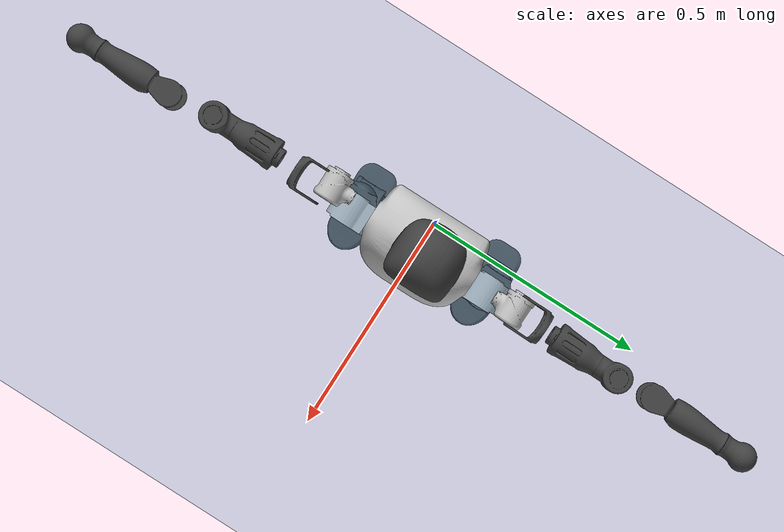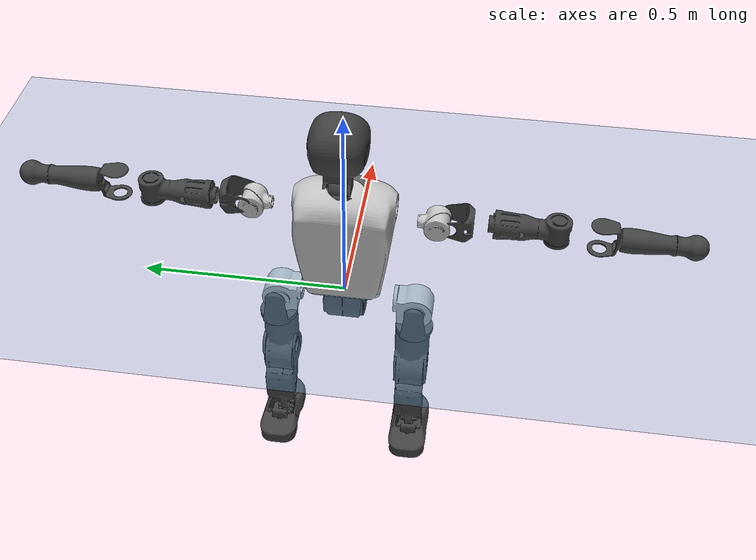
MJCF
<mujoco model="T1">
  <compiler angle="radian" assetdir="assets" balanceinertia="true" inertiafromgeom="false"/>

  <option timestep="0.005" density="1.2" viscosity="2e-05"/>

  <size nkey="1"/>

  <visual>
    <quality shadowsize="8192"/>
    <map shadowclip="0.5"/>
  </visual>

  <default>
    <default class="/">
      <joint armature="0.01" damping="0.01" frictionloss="0.1"/>
      <geom contype="0" conaffinity="0" group="1" solref="-1000 -80"/>
      <site size="0.01 0.005 0.005" group="5"/>
      <general forcelimited="true" biastype="affine" gainprm="25" biasprm="0 -25 -0.6"/>
      <default class="t1">
        <geom rgba="0.25 0.25 0.25 1"/>
        <default class="visual">
          <geom type="mesh" group="2"/>
        </default>
        <default class="collision">
          <geom group="3"/>
        </default>
        <default class="foot">
          <geom size="0.1115 0.05 0.015" type="box" condim="6" group="4" priority="1" solimp="0.015 1 0.015"/>
        </default>
        <default class="reward_collision_sphere">
          <geom group="5" rgba="1 0 0 1"/>
        </default>
      </default>
    </default>
  </default>

  <asset>
    <texture type="skybox" colorspace="auto" name="//unnamed_texture_0" builtin="gradient" rgb1="0.95 0.95 0.95" rgb2="0.95 0.95 0.95" width="100" height="600"/>
    <texture type="2d" colorspace="auto" name="texplane" builtin="checker" rgb1="0.345 0.575 0.748" rgb2="0.345 0.575 0.748" markrgb="1 1 1" width="512" height="512"/>
    <material name="MatPlane" class="/" texture="texplane" texuniform="true" texrepeat="2 2" specular="0.9"/>
    <mesh name="Trunk" class="/" file="Trunk.stl"/>
    <mesh name="H1" class="/" file="H1.stl"/>
    <mesh name="H2" class="/" file="H2.stl"/>
    <mesh name="AL1" class="/" file="AL1.stl"/>
    <mesh name="AL2" class="/" file="AL2.stl"/>
    <mesh name="AL3" class="/" file="AL3.stl"/>
    <mesh name="left_hand_link" class="/" file="left_hand_link.stl"/>
    <mesh name="AR1" class="/" file="AR1.stl"/>
    <mesh name="AR2" class="/" file="AR2.stl"/>
    <mesh name="AR3" class="/" file="AR3.stl"/>
    <mesh name="right_hand_link" class="/" file="right_hand_link.stl"/>
    <mesh name="Waist" class="/" file="Waist.stl"/>
    <mesh name="Hip_Pitch_Left" class="/" file="Hip_Pitch_Left.stl"/>
    <mesh name="Hip_Roll_Left" class="/" file="Hip_Roll_Left.stl"/>
    <mesh name="Hip_Yaw_Left" class="/" file="Hip_Yaw_Left.stl"/>
    <mesh name="Shank_Left" class="/" file="Shank_Left.stl"/>
    <mesh name="Ankle_Cross_Left" class="/" file="Ankle_Cross_Left.stl"/>
    <mesh name="left_foot_link" class="/" file="left_foot_link.stl"/>
    <mesh name="Hip_Pitch_Right" class="/" file="Hip_Pitch_Right.stl"/>
    <mesh name="Hip_Roll_Right" class="/" file="Hip_Roll_Right.stl"/>
    <mesh name="Hip_Yaw_Right" class="/" file="Hip_Yaw_Right.stl"/>
    <mesh name="Shank_Right" class="/" file="Shank_Right.stl"/>
    <mesh name="Ankle_Cross_Right" class="/" file="Ankle_Cross_Right.stl"/>
    <mesh name="right_foot_link" class="/" file="right_foot_link.stl"/>
  </asset>

  <worldbody>
    <geom name="floor" class="/" size="100 100 0.125" type="plane" group="0" material="MatPlane"/>
    <light name="toplight_shadow" class="/" pos="0 0 5" dir="0.0990148 0.0990148 -0.990148" type="directional" ambient="0.04 0.04 0.04" diffuse="0.55 0.55 0.55" specular="0.12 0.12 0.12"/>
    <light name="toplight_fill" class="/" pos="0 0 5" dir="0.0990148 0.0990148 -0.990148" type="directional" castshadow="false" ambient="0.04 0.04 0.04" diffuse="0.3 0.3 0.3" specular="0.08 0.08 0.08"/>
    <body name="trunk" childclass="t1" pos="0.000859152 0.005951 0.00547154" quat="1 1.57611e-05 -1.23098e-05 5.0884e-06">
      <inertial pos="0.0392558 -0.0151571 0.0763599" quat="0.998677 0.0270235 -0.0250303 0.0358897" mass="17.996" diaginertia="0.0539165 0.975607 0.0282869"/>
      <joint name="//unnamed_joint_0" type="free" armature="0" damping="0" frictionloss="0"/>
      <geom name="//unnamed_geom_1" class="visual" rgba="0.76 0.76 0.76 1" mesh="Trunk"/>
      <geom name="//unnamed_geom_2" class="collision" size="0.0842022 0.11227 0.168404" pos="0.0529555 0 0.101897" type="box"/>
      <geom name="//unnamed_geom_3" class="reward_collision_sphere" size="0.12911" pos="0.0529555 0 0.0849144"/>
      <geom name="//unnamed_geom_4" class="reward_collision_sphere" size="0.0168404" pos="0.0529555 0.13909 0"/>
      <geom name="//unnamed_geom_5" class="reward_collision_sphere" size="0.0168404" pos="0.0529555 -0.13909 0"/>
      <geom name="//unnamed_geom_6" class="reward_collision_sphere" size="0.0168404" pos="0.0529555 0.17509 0.152846"/>
      <geom name="//unnamed_geom_7" class="reward_collision_sphere" size="0.0168404" pos="0.0529555 -0.17509 0.152846"/>
      <site name="imu" pos="0.0421996 0.0367292 -0.0220842" size="0.011227"/>
      <camera name="track" pos="0 -3.27271 0" quat="0.707107 0.707107 0 0" mode="trackcom"/>
      <camera name="ego_camera" pos="0.107676 0 0.356641" quat="-0.5 -0.5 0.5 0.5"/>
      <body name="H1" pos="0.0606235 0.0120971 0.193507" quat="1 0.000411858 0.00017841 -0.000190807">
        <inertial pos="-0.000982184 -0.0175302 0.0519946" quat="0.751144 -0.0244753 -0.0576871 0.657157" mass="0.720395" diaginertia="0.000135171 0.00302671 6.34862e-05"/>
        <joint name="AAHead_yaw" pos="0 0 0" axis="0.0255052 0.0190196 0.999494" stiffness="0.0117629" range="-1.55091 1.83475" armature="0.0110787" damping="0" frictionloss="0.200299"/>
        <geom name="//unnamed_geom_8" class="visual" mesh="H1"/>
        <body name="H2" pos="-0.00439475 0.00568054 0.0643305" quat="1 -0.000241807 0.000220536 9.61895e-05">
          <inertial pos="0.0118636 0.0154655 0.0895577" quat="0.982396 0.0903836 -0.140368 -0.0838235" mass="0.899341" diaginertia="0.00109119 0.0227257 0.000655599"/>
          <joint name="Head_pitch" pos="0 0 0" axis="0.00151291 -0.999799 0.0199948" range="-1.20751 0.327724" armature="0.0106319" damping="0" frictionloss="0.165197"/>
          <geom name="//unnamed_geom_9" class="visual" mesh="H2"/>
          <geom name="//unnamed_geom_10" class="collision" size="0.0898157" pos="0.00882592 0 0.0934059"/>
          <geom name="//unnamed_geom_11" class="reward_collision_sphere" size="0.101043" pos="0.0176518 0 0.0849144"/>
        </body>
      </body>
      <body name="AL1" pos="0.0606853 0.175839 0.193993" quat="0.999979 0.00281701 -0.0015842 -0.0055458">
        <inertial pos="-0.000578863 0.0806793 0.00635421" quat="0.497646 0.441578 -0.541803 0.51362" mass="0.76326" diaginertia="0.000687244 0.0127757 0.000128731"/>
        <joint name="Left_Shoulder_Pitch" pos="0 0 0" axis="-0.00461197 0.999975 0.00543872" range="-3.37966 0.979631" armature="0.0112161" damping="0.0283719" frictionloss="0.106903"/>
        <geom name="//unnamed_geom_12" class="visual" rgba="0.76 0.76 0.76 1" mesh="AL1"/>
        <body name="AL2" pos="0.000232953 0.0651619 0.00982932" quat="0.999988 -0.00196866 -0.0038432 -0.00247622">
          <inertial pos="-0.00999236 0.0471817 -0.00826741" quat="0.427286 0.501247 -0.522672 0.541287" mass="0.203158" diaginertia="0.000211316 0.00397342 6.40965e-05"/>
          <joint name="Left_Shoulder_Roll" pos="0 0 0" axis="-0.999999 0.00084859 0.000882344" range="-1.56411 1.75198" armature="0.00955282" damping="0" frictionloss="0.13275"/>
          <geom name="//unnamed_geom_13" class="visual" mesh="AL2"/>
          <body name="AL3" pos="0.000348027 0.0835503 -0.00773371" quat="0.999999 0.00117978 0.000174736 4.20786e-05">
            <inertial pos="0.0139691 0.138767 0.00865438" quat="0.712481 0.700129 -0.0310494 -0.0350104" mass="1.06738" diaginertia="0.00622414 0.12281 0.000219932"/>
            <joint name="Left_Elbow_Pitch" pos="0 0 0" axis="-0.0358783 -0.99932 -0.00853283" range="-2.33335 1.99666" armature="0.0121963" damping="0" frictionloss="0.11205"/>
            <geom name="//unnamed_geom_14" class="visual" mesh="AL3"/>
            <geom name="//unnamed_geom_15" class="collision" size="0.0336809 0.0842022" pos="0 0.0818176 0" quat="0.707105 0.707108 0 0" type="cylinder"/>
            <geom name="//unnamed_geom_16" class="reward_collision_sphere" size="0.0404171"/>
            <body name="left_hand_link" pos="-0.00708227 0.227145 0.0144968" quat="0.999999 -0.00109895 0.000104443 -0.000924926">
              <inertial pos="-0.00165166 0.181369 -0.000671446" quat="0.722291 0.69148 0.00242063 0.0120226" mass="0.447824" diaginertia="0.00502494 0.0960269 9.81282e-05"/>
              <joint name="Left_Elbow_Yaw" pos="0 0 0" axis="-0.0150479 -0.0244101 0.999589" range="-2.16992 0.0272179" armature="0.00997549" damping="0.0853936" frictionloss="0.049134"/>
              <geom name="//unnamed_geom_17" class="visual" mesh="left_hand_link"/>
              <geom name="//unnamed_geom_18" class="collision" size="0.0336809 0.0982359" pos="0 0.212726 0" quat="0.707105 0.707108 0 0" type="cylinder"/>
              <geom name="//unnamed_geom_19" class="reward_collision_sphere" size="0.0561348"/>
              <geom name="//unnamed_geom_20" class="reward_collision_sphere" size="0.0392944" pos="0 0.179999 0"/>
              <geom name="//unnamed_geom_21" class="reward_collision_sphere" size="0.0392944" pos="0 0.351816 0"/>
            </body>
          </body>
        </body>
      </body>
      <body name="AR1" pos="0.0476171 -0.172724 0.190505" quat="0.999989 0.0043009 0.000610632 0.00157729">
        <inertial pos="0.00827124 -0.0753114 0.0138138" quat="0.445944 0.527368 -0.51665 0.506053" mass="0.585122" diaginertia="0.000667074 0.0126738 0.000104065"/>
        <joint name="Right_Shoulder_Pitch" pos="0 0 0" axis="0.0257669 -0.999276 -0.0279916" range="-1.23263 3.29982" armature="0.00937475" damping="0.070779" frictionloss="0.192575"/>
        <geom name="//unnamed_geom_22" class="visual" rgba="0.76 0.76 0.76 1" mesh="AR1"/>
        <body name="AR2" pos="0.0137414 -0.0746601 -0.00256815" quat="1 -4.22092e-05 0.000127748 -0.000131106">
          <inertial pos="0.01193 -0.0469232 -0.00276727" quat="0.517102 0.510133 -0.537199 0.428705" mass="0.206243" diaginertia="0.000177726 0.0036452 6.40205e-05"/>
          <joint name="Right_Shoulder_Roll" pos="0 0 0" axis="-0.998851 -0.0131493 -0.0460903" range="-1.73388 1.57156" armature="0.0107317" damping="0.0853366" frictionloss="0.0872808"/>
          <geom name="//unnamed_geom_23" class="visual" mesh="AR2"/>
          <body name="AR3" pos="-0.00265101 -0.102858 0.00634782" quat="0.99999 0.00416798 -0.0015532 -0.000555331">
            <inertial pos="-0.00495312 -0.137657 0.0041823" quat="0.68493 0.727777 0.0212698 0.0275629" mass="1.30415" diaginertia="0.00617326 0.158567 0.000261729"/>
            <joint name="Right_Elbow_Pitch" pos="0 0 0" axis="-0.0030551 0.999584 0.028694" range="-2.22201 2.1635" armature="0.010543" damping="0" frictionloss="0.0931993"/>
            <geom name="//unnamed_geom_24" class="visual" mesh="AR3"/>
            <geom name="//unnamed_geom_25" class="collision" size="0.0336809 0.0842022" pos="0 -0.0818176 0" quat="0.707105 0.707108 0 0" type="cylinder"/>
            <geom name="//unnamed_geom_26" class="reward_collision_sphere" size="0.0404171"/>
            <body name="right_hand_link" pos="0.0108332 -0.249678 -0.0148148" quat="0.999989 0.00203017 -0.00369689 0.00220726">
              <inertial pos="0.000801184 -0.189259 -0.00557407" quat="0.708532 0.70544 -0.0152847 0.0101063" mass="0.440098" diaginertia="0.00374015 0.0814651 9.28673e-05"/>
              <joint name="Right_Elbow_Yaw" pos="0 0 0" axis="-0.00103862 -0.00494422 0.999987" range="-0.189814 2.42831" armature="0.011895" damping="0.00827121" frictionloss="0.0343252"/>
              <geom name="//unnamed_geom_27" class="visual" mesh="right_hand_link"/>
              <geom name="//unnamed_geom_28" class="collision" size="0.0336809 0.0982359" pos="0 -0.212726 0" quat="0.707105 0.707108 0 0" type="cylinder"/>
              <geom name="//unnamed_geom_29" class="reward_collision_sphere" size="0.0561348"/>
              <geom name="//unnamed_geom_30" class="reward_collision_sphere" size="0.0392944" pos="0 -0.179999 0"/>
              <geom name="//unnamed_geom_31" class="reward_collision_sphere" size="0.0392944" pos="0 -0.351816 0"/>
            </body>
          </body>
        </body>
      </body>
      <body name="Waist" pos="0.0660554 0.0019434 -0.0846553" quat="0.999996 -0.00116105 -0.00183167 0.0018243">
        <inertial pos="0.0180045 -0.00380205 0.00344426" quat="0.984633 0.00829916 -0.174425 0.00214792" mass="4.58535" diaginertia="0.00377954 0.0694703 0.00215099"/>
        <joint name="Waist" pos="0 0 0" axis="-0.0225986 -0.0148923 0.999634" stiffness="0.0101745" range="-1.40397 1.58601" armature="0.00608227" damping="0" frictionloss="0.118011"/>
        <geom name="//unnamed_geom_32" class="visual" mesh="Waist"/>
        <body name="Hip_Pitch_Left" pos="-0.00258834 0.165231 0.0120045" quat="0.999999 -0.000971986 -0.00105891 -0.000597485">
          <inertial pos="0.00178167 -0.0233073 -0.0253624" quat="0.966866 0.252582 0.031945 -0.0187752" mass="1.20139" diaginertia="0.000986908 0.0151469 0.000563182"/>
          <joint name="Left_Hip_Pitch" pos="0 0 0" axis="0.0107707 0.999916 -0.00715222" range="-1.82316 1.29726" armature="0.00283082" damping="0" frictionloss="0.0796976"/>
          <geom name="//unnamed_geom_33" class="visual" rgba="0.76 0.76 0.76 1" mesh="Hip_Pitch_Left"/>
          <body name="Hip_Roll_Left" pos="-0.0135579 0.00733326 -0.00909181" quat="1 -5.46472e-05 1.72308e-05 -7.45007e-06">
            <inertial pos="0.00875257 -0.00120947 -0.0529327" quat="0.709207 -0.0674358 -0.0433915 0.700425" mass="0.595357" diaginertia="0.000991675 0.0148746 0.000213396"/>
            <joint name="Left_Hip_Roll" pos="0 0 0" axis="-0.998161 0.059625 -0.0109504" range="-1.56379 0.123649" armature="0.00353847" damping="0.0274457" frictionloss="0.159468"/>
            <geom name="//unnamed_geom_34" class="visual" mesh="Hip_Roll_Left"/>
            <geom name="//unnamed_geom_35" class="reward_collision_sphere" size="0.0617483"/>
            <body name="Hip_Yaw_Left" pos="0.00965626 -0.0015482 -0.0791962" quat="0.999999 -0.00048579 -0.000808913 -0.00102632">
              <inertial pos="0.00588252 -0.00504891 -0.0722618" quat="0.694664 -0.0257697 -0.0254369 0.718423" mass="3.24435" diaginertia="0.013995 0.347893 0.00116055"/>
              <joint name="Left_Hip_Yaw" pos="0 0 0" axis="-0.0148617 0.00547088 -0.999875" stiffness="0.000188034" range="-0.835283 0.746207" armature="0.0113825" damping="0.0375277" frictionloss="0.107185"/>
              <geom name="//unnamed_geom_36" class="visual" mesh="Hip_Yaw_Left"/>
              <geom name="//unnamed_geom_37" class="collision" size="0.0561348 0.0898157" type="cylinder"/>
              <body name="Shank_Left" pos="-0.027207 -0.000636238 -0.0978619" quat="1 0.000855946 0.000189698 0.000305582">
                <inertial pos="-0.00139111 -0.0117983 -0.118499" quat="0.99741 0.00198182 -0.026158 0.0669697" mass="2.9367" diaginertia="0.0188981 0.418165 0.000779924"/>
                <joint name="Left_Knee_Pitch" pos="0 0 0" axis="-0.00675113 0.999977 3.6416e-05" range="-0.151162 2.48134" armature="0.0107221" damping="0.00288811" frictionloss="0.134521"/>
                <geom name="//unnamed_geom_38" class="visual" mesh="Shank_Left"/>
                <geom name="//unnamed_geom_39" class="collision" size="0.0561348 0.0842022" pos="0 0 -0.101897" type="cylinder"/>
                <geom name="//unnamed_geom_40" class="reward_collision_sphere" size="0.0729753"/>
                <body name="Ankle_Cross_Left" pos="-0.00229654 -0.0023921 -0.249252" quat="1 -0.000389226 0.000857845 -0.000243785">
                  <inertial pos="0.00368437 -0.0105829 -0.014975" quat="0.416872 0.565134 0.582019 0.409994" mass="0.0909343" diaginertia="1.35148e-05 0.000344393 5.1849e-06"/>
                  <joint name="Left_Ankle_Pitch" pos="0 0 0" axis="0.000542937 1 -0.000425397" range="-1.14341 0.28167" armature="0.0152435" damping="0.0239465" frictionloss="0.0838119"/>
                  <geom name="//unnamed_geom_41" class="visual" mesh="Ankle_Cross_Left"/>
                  <body name="left_foot_link" pos="0.0040214 0.00988061 -0.0174147" quat="0.999993 -0.00214325 0.00219112 -0.0020164">
                    <inertial pos="0.0106814 -0.000878873 0.00403886" quat="-0.0158868 0.628501 -0.0172388 0.777455" mass="1.10469" diaginertia="0.00194338 0.0289016 0.000899954"/>
                    <joint name="Left_Ankle_Roll" pos="0 0 0" axis="-0.999967 4.53685e-05 0.00810672" range="-0.483618 0.444441" armature="0.0120146" damping="0.0267826" frictionloss="0.114862"/>
                    <geom name="//unnamed_geom_42" class="visual" mesh="left_foot_link"/>
                    <geom name="left_foot" class="foot" size="0.0869897 0.0272927 0.0177441" pos="0.00882592 0 -0.0127372"/>
                    <geom name="//unnamed_geom_44" class="reward_collision_sphere" size="0.0583802" pos="0.00882592 0 -0.0127372"/>
                    <geom name="//unnamed_geom_45" class="reward_collision_sphere" size="0.0336809" pos="0.0838463 -0.0376361 -0.0127372"/>
                    <geom name="//unnamed_geom_46" class="reward_collision_sphere" size="0.0336809" pos="-0.0617815 -0.0376361 -0.0127372"/>
                    <site name="left_foot" class="foot" pos="0.00882592 0 -0.0127372" size="0.011227"/>
                  </body>
                </body>
              </body>
            </body>
          </body>
        </body>
        <body name="Hip_Pitch_Right" pos="0.0029743 -0.1785 -0.00462433" quat="0.999978 0.000459256 0.00610357 -0.00256429">
          <inertial pos="0.0119737 0.0175426 -0.0279147" quat="0.976159 -0.215425 0.0109881 -0.0242008" mass="1.27468" diaginertia="0.000847447 0.015877 0.000576577"/>
          <joint name="Right_Hip_Pitch" pos="0 0 0" axis="-0.012151 -0.999893 0.00811402" range="-1.58695 2.09739" armature="0.0166516" damping="0" frictionloss="0.117996"/>
          <geom name="//unnamed_geom_47" class="visual" rgba="0.76 0.76 0.76 1" mesh="Hip_Pitch_Right"/>
          <body name="Hip_Roll_Right" pos="-0.0139794 0.00022063 -0.00703117" quat="0.999993 0.000143877 0.00232855 0.00306794">
            <inertial pos="0.00149381 -0.00578407 -0.0548875" quat="0.745588 0.0186413 0.0315297 0.665399" mass="0.575923" diaginertia="0.000937285 0.0148175 0.000220835"/>
            <joint name="Right_Hip_Roll" pos="0 0 0" axis="-0.999988 0.00424396 0.00232795" stiffness="0.000610936" range="-0.508626 1.64605" armature="0.0118632" damping="0.00245816" frictionloss="0.0674739"/>
            <geom name="//unnamed_geom_48" class="visual" mesh="Hip_Roll_Right"/>
            <geom name="//unnamed_geom_49" class="reward_collision_sphere" size="0.0617483"/>
            <body name="Hip_Yaw_Right" pos="0.0067146 0.00416981 -0.0711082" quat="0.999999 -0.00102806 0.000874863 0.000231757">
              <inertial pos="-0.00520446 0.00793762 -0.061961" quat="0.731057 -0.0434133 -0.0288943 0.680321" mass="2.76068" diaginertia="0.012877 0.249629 0.00119683"/>
              <joint name="Right_Hip_Yaw" pos="0 0 0" axis="0.0390364 -0.0689312 -0.996857" stiffness="0.00774539" range="-1.06526 0.908788" armature="0.00431297" damping="0.075438" frictionloss="0.113242"/>
              <geom name="//unnamed_geom_50" class="visual" mesh="Hip_Yaw_Right"/>
              <geom name="//unnamed_geom_51" class="collision" size="0.0561348 0.0898157" type="cylinder"/>
              <body name="Shank_Right" pos="-0.00824378 0.000659544 -0.125405" quat="0.999991 0.00220659 -0.000259073 0.00373654">
                <inertial pos="-0.00712773 0.000750581 -0.0929291" quat="0.999047 0.00547416 -0.0304633 -0.0307641" mass="2.07411" diaginertia="0.016103 0.366134 0.000706451"/>
                <joint name="Right_Knee_Pitch" pos="0 0 0" axis="-0.0576154 -0.998338 -0.000950676" range="-2.61037 -0.126215" armature="0.00285027" damping="0" frictionloss="0.106444"/>
                <geom name="//unnamed_geom_52" class="visual" mesh="Shank_Right"/>
                <geom name="//unnamed_geom_53" class="collision" size="0.0561348 0.0842022" pos="0 0 -0.101897" type="cylinder"/>
                <geom name="//unnamed_geom_54" class="reward_collision_sphere" size="0.0729753"/>
                <body name="Ankle_Cross_Right" pos="0.00882643 -0.00497997 -0.239661" quat="1 -0.000103194 2.88063e-05 0.000111409">
                  <inertial pos="-0.0037446 0.00930898 -0.00671915" quat="0.433946 0.555551 0.569788 0.422368" mass="0.0862341" diaginertia="1.45143e-05 0.000279878 4.13017e-06"/>
                  <joint name="Right_Ankle_Pitch" pos="0 0 0" axis="-0.0380374 -0.999257 -0.00618798" stiffness="0.0596506" range="-0.103408 1.1212" armature="0.011463" damping="0" frictionloss="0.133609"/>
                  <geom name="//unnamed_geom_55" class="visual" mesh="Ankle_Cross_Right"/>
                  <body name="right_foot_link" pos="-0.0132824 0.000393232 -0.00389369" quat="1 -1.44024e-05 3.5006e-05 0.000226321">
                    <inertial pos="0.0146241 0.0043094 -0.00653957" quat="-0.00359849 0.620663 0.00291243 0.784064" mass="0.977574" diaginertia="0.00142008 0.031645 0.000944867"/>
                    <joint name="Right_Ankle_Roll" pos="0 0 0" axis="-0.998844 -0.0318639 0.0360036" stiffness="0.00899024" range="-0.157608 0.441098" armature="0.0103997" damping="0.068898" frictionloss="0.0976553"/>
                    <geom name="//unnamed_geom_56" class="visual" mesh="right_foot_link"/>
                    <geom name="right_foot" class="foot" size="0.0962578 0.0673275 0.0203869" pos="0.00882592 0 -0.0127372"/>
                    <geom name="//unnamed_geom_58" class="reward_collision_sphere" size="0.0449079"/>
                    <geom name="//unnamed_geom_59" class="reward_collision_sphere" size="0.0336809" pos="0.00882592 0 -0.0127372"/>
                    <geom name="//unnamed_geom_60" class="reward_collision_sphere" size="0.0336809" pos="0.0838463 0.0376361 -0.0127372"/>
                    <geom name="//unnamed_geom_61" class="reward_collision_sphere" size="0.0336809" pos="-0.0617815 0.0376361 -0.0127372"/>
                    <site name="right_foot" class="foot" pos="0.00882592 0 -0.0127372" size="0.011227"/>
                  </body>
                </body>
              </body>
            </body>
          </body>
        </body>
      </body>
    </body>
  </worldbody>

  <contact>
    <pair class="/" geom1="floor" geom2="left_foot" name="//unnamed_contact_0"/>
    <pair class="/" geom1="floor" geom2="right_foot" name="//unnamed_contact_1"/>
  </contact>

  <actuator>
    <general name="AAHead_yaw" class="/" joint="AAHead_yaw" forcerange="-6.48926 6.48926" gainprm="35.5331" biasprm="0 -35.5331 -0.707842"/>
    <general name="Head_pitch" class="/" joint="Head_pitch" forcerange="-8.10156 8.10156" gainprm="35.5331" biasprm="0 -35.5331 -0.707842"/>
    <general name="Left_Shoulder_Pitch" class="/" joint="Left_Shoulder_Pitch" forcerange="-26.6578 26.6578" gainprm="35.5331" biasprm="0 -35.5331 -0.707842"/>
    <general name="Left_Shoulder_Roll" class="/" joint="Left_Shoulder_Roll" forcerange="-24.0737 24.0737" gainprm="35.5331" biasprm="0 -35.5331 -0.707842"/>
    <general name="Left_Elbow_Pitch" class="/" joint="Left_Elbow_Pitch" forcerange="-21.398 21.398" gainprm="35.5331" biasprm="0 -35.5331 -0.707842"/>
    <general name="Left_Elbow_Yaw" class="/" joint="Left_Elbow_Yaw" forcerange="-24.2958 24.2958" gainprm="35.5331" biasprm="0 -35.5331 -0.707842"/>
    <general name="Right_Shoulder_Pitch" class="/" joint="Right_Shoulder_Pitch" forcerange="-16.3109 16.3109" gainprm="35.5331" biasprm="0 -35.5331 -0.707842"/>
    <general name="Right_Shoulder_Roll" class="/" joint="Right_Shoulder_Roll" forcerange="-26.3844 26.3844" gainprm="35.5331" biasprm="0 -35.5331 -0.707842"/>
    <general name="Right_Elbow_Pitch" class="/" joint="Right_Elbow_Pitch" forcerange="-9.87245 9.87245" gainprm="35.5331" biasprm="0 -35.5331 -0.707842"/>
    <general name="Right_Elbow_Yaw" class="/" joint="Right_Elbow_Yaw" forcerange="-15.8404 15.8404" gainprm="35.5331" biasprm="0 -35.5331 -0.707842"/>
    <general name="Waist" class="/" joint="Waist" forcerange="-26.3938 26.3938" gainprm="35.5331" biasprm="0 -35.5331 -0.707842"/>
    <general name="Left_Hip_Pitch" class="/" joint="Left_Hip_Pitch" forcerange="-50.2476 50.2476" gainprm="35.5331" biasprm="0 -35.5331 -0.707842"/>
    <general name="Left_Hip_Roll" class="/" joint="Left_Hip_Roll" forcerange="-19.8257 19.8257" gainprm="35.5331" biasprm="0 -35.5331 -0.707842"/>
    <general name="Left_Hip_Yaw" class="/" joint="Left_Hip_Yaw" forcerange="-48.4361 48.4361" gainprm="35.5331" biasprm="0 -35.5331 -0.707842"/>
    <general name="Left_Knee_Pitch" class="/" joint="Left_Knee_Pitch" forcerange="-60.6506 60.6506" gainprm="35.5331" biasprm="0 -35.5331 -0.707842"/>
    <general name="Left_Ankle_Pitch" class="/" joint="Left_Ankle_Pitch" forcerange="-21.9139 21.9139" gainprm="35.5331" biasprm="0 -35.5331 -0.707842"/>
    <general name="Left_Ankle_Roll" class="/" joint="Left_Ankle_Roll" forcerange="-8.89628 8.89628" gainprm="35.5331" biasprm="0 -35.5331 -0.707842"/>
    <general name="Right_Hip_Pitch" class="/" joint="Right_Hip_Pitch" forcerange="-50.1957 50.1957" gainprm="35.5331" biasprm="0 -35.5331 -0.707842"/>
    <general name="Right_Hip_Roll" class="/" joint="Right_Hip_Roll" forcerange="-34.0843 34.0843" gainprm="35.5331" biasprm="0 -35.5331 -0.707842"/>
    <general name="Right_Hip_Yaw" class="/" joint="Right_Hip_Yaw" forcerange="-15.7693 15.7693" gainprm="35.5331" biasprm="0 -35.5331 -0.707842"/>
    <general name="Right_Knee_Pitch" class="/" joint="Right_Knee_Pitch" forcerange="-66.7246 66.7246" gainprm="35.5331" biasprm="0 -35.5331 -0.707842"/>
    <general name="Right_Ankle_Pitch" class="/" joint="Right_Ankle_Pitch" forcerange="-25.3385 25.3385" gainprm="35.5331" biasprm="0 -35.5331 -0.707842"/>
    <general name="Right_Ankle_Roll" class="/" joint="Right_Ankle_Roll" forcerange="-22.3539 22.3539" gainprm="35.5331" biasprm="0 -35.5331 -0.707842"/>
  </actuator>

  <sensor>
    <gyro site="imu" name="imu_angular_velocity"/>
    <velocimeter site="imu" name="imu_linear_velocity"/>
    <framelinvel objtype="site" objname="left_foot" name="left_foot_global_linear_velocity"/>
    <framelinvel objtype="site" objname="right_foot" name="right_foot_global_linear_velocity"/>
  </sensor>

  <keyframe>
    <key name="home" qpos="0 0 0.6385 1 0 0 0 0 0 0 1.4 0 -0.4 0 -1.4 0 0.4 0 -0.4 0 0 0.8 -0.4 0 0.4 0 0 -0.8 0.4 0"/>
  </keyframe>
</mujoco>
